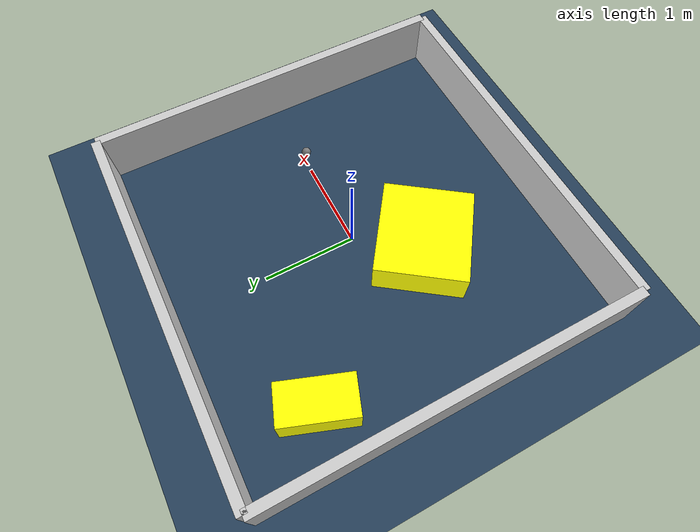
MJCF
<?xml version="1.0" ?>
<mujoco model="generated_environment">
  <option timestep="0.01" integrator="RK4" cone="elliptic"/>
  <default>
    <geom density="1"/>
  </default>
  <asset>
    <texture builtin="gradient" height="3072" rgb1="0.3 0.5 0.7" rgb2="0 0 0" type="skybox" width="512"/>
    <texture builtin="checker" height="300" mark="edge" markrgb="0.8 0.8 0.8" name="groundplane" rgb1="0.2 0.3 0.4" rgb2="0.1 0.2 0.3" type="2d" width="300"/>
    <material name="groundplane" reflectance="0.2" texrepeat="5 5" texture="groundplane" texuniform="true"/>
    <material name="robot" rgba="0.0 1.0 0.0 1"/>
  </asset>
  <worldbody>
    <light dir="0 0 -1" directional="true" pos="0 0 1.5"/>
    <geom condim="4" friction="1.0 0.005 0.001" material="groundplane" name="floor" size="0 0 0.05" type="plane"/>
    <body name="walls">
      <geom name="wall_1" condim="4" pos="-2.0 0.0 0.3" rgba="0.800000011920929 0.800000011920929 0.800000011920929 1.0" size="0.05 2.0 0.3" type="box"/>
      <geom name="wall_2" condim="4" pos="2.0 0.0 0.3" rgba="0.800000011920929 0.800000011920929 0.800000011920929 1.0" size="0.05 2.0 0.3" type="box"/>
      <geom name="wall_3" condim="4" pos="0.0 -2.0 0.3" rgba="0.800000011920929 0.800000011920929 0.800000011920929 1.0" size="2.0 0.05 0.3" type="box"/>
      <geom name="wall_4" condim="4" pos="0.0 2.0 0.3" rgba="0.800000011920929 0.800000011920929 0.800000011920929 1.0" size="2.0 0.05 0.3" type="box"/>
    </body>
    <body name="robot">
      <joint name="joint_x" type="slide" pos="0 0 0" axis="1 0 0"/>
      <joint name="joint_y" type="slide" pos="0 0 0" axis="0 1 0"/>
      <geom name="robot" type="sphere" pos="1.1252709453437806 -0.012816304129887435 0.2" size="0.05" mass="5." friction="1.0 0.005 0.0001" condim="4"/>
      <site name="sensor_ball"/>
    </body>
    <body name="obstacle_1_movable">
      <geom name="obstacle_1_movable" condim="4" pos="-1.430928037167635 1.0995814527369856 0.2" euler="0 0 69.89583159513465" friction="1.0 0.005 0.001" rgba="1 1 0 1" size="0.379745377844389 0.20227555139480535 0.2" type="box" mass="0.1"/>
      <joint type="free"/>
    </body>
    <body name="obstacle_2_movable">
      <geom name="obstacle_2_movable" condim="4" pos="-0.43854808967640646 -0.6029516060815203 0.2" euler="0 0 324.2912676049617" friction="1.0 0.005 0.001" rgba="1 1 0 1" size="0.505725511971099 0.4718713017490164 0.2" type="box" mass="0.1"/>
      <joint type="free"/>
    </body>
  </worldbody>
  <actuator>
    <motor name="actuator_x" joint="joint_x" gear="1" ctrlrange="-1 1"/>
    <motor name="actuator_y" joint="joint_y" gear="1" ctrlrange="-1 1"/>
  </actuator>
</mujoco>
